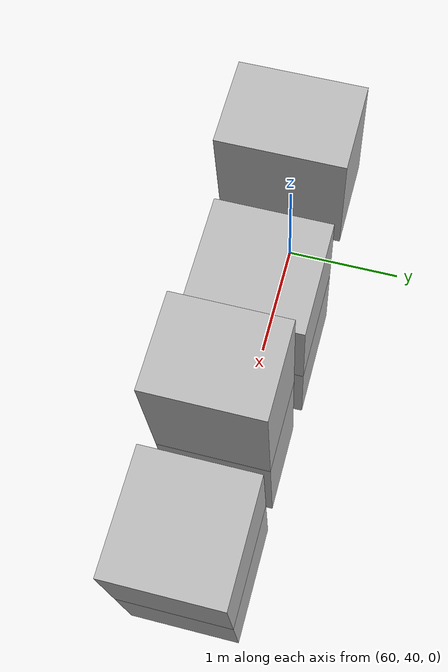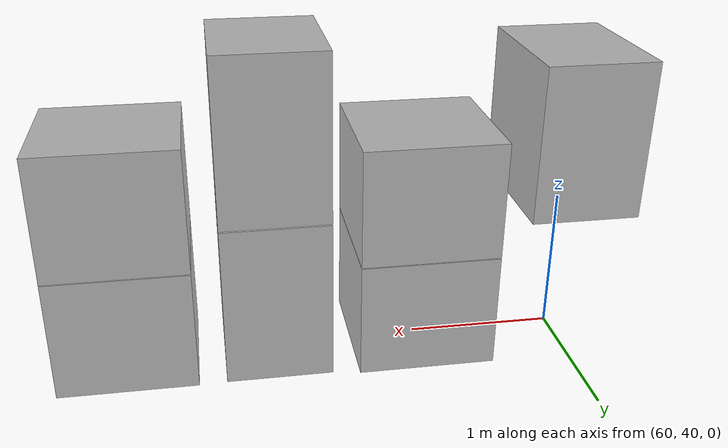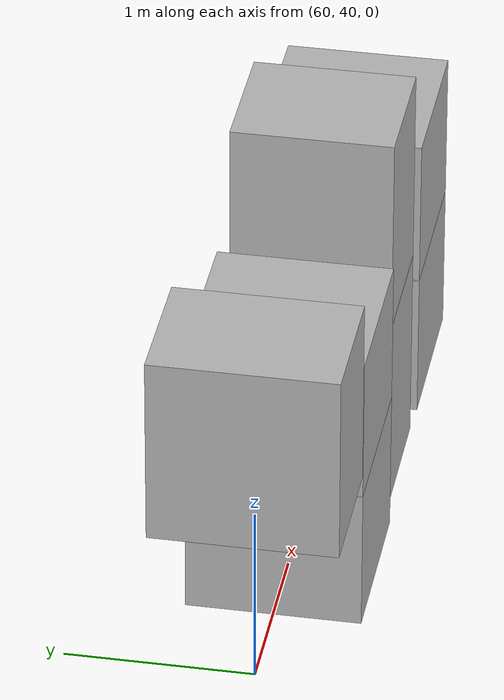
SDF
<sdf version="1.5">
 <world name="default">
  <model name="ground_plane">
   <static>true</static>
   <link name="link">
    <collision name="collision">
     <geometry><plane><normal>0 0 1</normal><size>250 250</size></plane></geometry>
     <surface><friction><ode><mu>1</mu><mu2>1</mu2></ode></friction></surface>
    </collision>
    <visual name="grass">
     <cast_shadows>false</cast_shadows>
     <geometry><mesh><uri>file://grass_plane/meshes/grass_plane.dae</uri></mesh></geometry>
    </visual>
   </link>
  </model>
  <model name="Cardboard_box_top_285">
   <link name="link_0">
    <pose>60 40 1.04675736406 0 0 0</pose>
    <inertial>
     <mass>1</mass>
     <inertia>
      <ixx>0.166667</ixx>
      <ixy>0</ixy>
      <ixz>0</ixz>
      <iyy>0.166667</iyy>
      <iyz>0</iyz>
      <izz>0.166667</izz>
     </inertia>
    </inertial>
    <collision name="collision">
     <geometry>
      <mesh>
       <uri>model://Cardboard_box/meshes/cardboard_box.dae</uri>
       <scale>1.7978200823 2.46832205922 2.61689341016</scale>
      </mesh>
     </geometry>
    </collision>
    <visual name="visual">
     <geometry>
      <mesh>
       <uri>model://Cardboard_box/meshes/cardboard_box.dae</uri>
       <scale>1.7978200823 2.46832205922 2.61689341016</scale>
      </mesh>
     </geometry>
    </visual>
   </link>
   <static>1</static>
  </model>
  <model name="Cardboard_box_286">
   <link name="link_0">
    <pose>61 40 0 0 0 0</pose>
    <inertial>
     <mass>1</mass>
     <inertia>
      <ixx>0.166667</ixx>
      <ixy>0</ixy>
      <ixz>0</ixz>
      <iyy>0.166667</iyy>
      <iyz>0</iyz>
      <izz>0.166667</izz>
     </inertia>
    </inertial>
    <collision name="collision">
     <geometry>
      <mesh>
       <uri>model://Cardboard_box/meshes/cardboard_box.dae</uri>
       <scale>2.33283844401 2.33726424623 2.00786734639</scale>
      </mesh>
     </geometry>
    </collision>
    <visual name="visual">
     <geometry>
      <mesh>
       <uri>model://Cardboard_box/meshes/cardboard_box.dae</uri>
       <scale>2.33283844401 2.33726424623 2.00786734639</scale>
      </mesh>
     </geometry>
    </visual>
   </link>
   <static>1</static>
  </model>
  <model name="Cardboard_box_top_286">
   <link name="link_0">
    <pose>61 40 0.803146938555 0 0 0</pose>
    <inertial>
     <mass>1</mass>
     <inertia>
      <ixx>0.166667</ixx>
      <ixy>0</ixy>
      <ixz>0</ixz>
      <iyy>0.166667</iyy>
      <iyz>0</iyz>
      <izz>0.166667</izz>
     </inertia>
    </inertial>
    <collision name="collision">
     <geometry>
      <mesh>
       <uri>model://Cardboard_box/meshes/cardboard_box.dae</uri>
       <scale>2.33283844401 2.33726424623 2.00786734639</scale>
      </mesh>
     </geometry>
    </collision>
    <visual name="visual">
     <geometry>
      <mesh>
       <uri>model://Cardboard_box/meshes/cardboard_box.dae</uri>
       <scale>2.33283844401 2.33726424623 2.00786734639</scale>
      </mesh>
     </geometry>
    </visual>
   </link>
   <static>1</static>
  </model>
  <model name="Cardboard_box_287">
   <link name="link_0">
    <pose>62 40 0 0 0 0</pose>
    <inertial>
     <mass>1</mass>
     <inertia>
      <ixx>0.166667</ixx>
      <ixy>0</ixy>
      <ixz>0</ixz>
      <iyy>0.166667</iyy>
      <iyz>0</iyz>
      <izz>0.166667</izz>
     </inertia>
    </inertial>
    <collision name="collision">
     <geometry>
      <mesh>
       <uri>model://Cardboard_box/meshes/cardboard_box.dae</uri>
       <scale>1.79371287462 2.16934323292 2.78935721921</scale>
      </mesh>
     </geometry>
    </collision>
    <visual name="visual">
     <geometry>
      <mesh>
       <uri>model://Cardboard_box/meshes/cardboard_box.dae</uri>
       <scale>1.79371287462 2.16934323292 2.78935721921</scale>
      </mesh>
     </geometry>
    </visual>
   </link>
   <static>1</static>
  </model>
  <model name="Cardboard_box_top_287">
   <link name="link_0">
    <pose>62 40 1.11574288768 0 0 0</pose>
    <inertial>
     <mass>1</mass>
     <inertia>
      <ixx>0.166667</ixx>
      <ixy>0</ixy>
      <ixz>0</ixz>
      <iyy>0.166667</iyy>
      <iyz>0</iyz>
      <izz>0.166667</izz>
     </inertia>
    </inertial>
    <collision name="collision">
     <geometry>
      <mesh>
       <uri>model://Cardboard_box/meshes/cardboard_box.dae</uri>
       <scale>1.79371287462 2.16934323292 2.78935721921</scale>
      </mesh>
     </geometry>
    </collision>
    <visual name="visual">
     <geometry>
      <mesh>
       <uri>model://Cardboard_box/meshes/cardboard_box.dae</uri>
       <scale>1.79371287462 2.16934323292 2.78935721921</scale>
      </mesh>
     </geometry>
    </visual>
   </link>
   <static>1</static>
  </model>
  <model name="Cardboard_box_288">
   <link name="link_0">
    <pose>63 40 0 0 0 0</pose>
    <inertial>
     <mass>1</mass>
     <inertia>
      <ixx>0.166667</ixx>
      <ixy>0</ixy>
      <ixz>0</ixz>
      <iyy>0.166667</iyy>
      <iyz>0</iyz>
      <izz>0.166667</izz>
     </inertia>
    </inertial>
    <collision name="collision">
     <geometry>
      <mesh>
       <uri>model://Cardboard_box/meshes/cardboard_box.dae</uri>
       <scale>2.31711006042 2.2130881611 2.09935098561</scale>
      </mesh>
     </geometry>
    </collision>
    <visual name="visual">
     <geometry>
      <mesh>
       <uri>model://Cardboard_box/meshes/cardboard_box.dae</uri>
       <scale>2.31711006042 2.2130881611 2.09935098561</scale>
      </mesh>
     </geometry>
    </visual>
   </link>
   <static>1</static>
  </model>
  <model name="Cardboard_box_top_288">
   <link name="link_0">
    <pose>63 40 0.839740394243 0 0 0</pose>
    <inertial>
     <mass>1</mass>
     <inertia>
      <ixx>0.166667</ixx>
      <ixy>0</ixy>
      <ixz>0</ixz>
      <iyy>0.166667</iyy>
      <iyz>0</iyz>
      <izz>0.166667</izz>
     </inertia>
    </inertial>
    <collision name="collision">
     <geometry>
      <mesh>
       <uri>model://Cardboard_box/meshes/cardboard_box.dae</uri>
       <scale>2.31711006042 2.2130881611 2.09935098561</scale>
      </mesh>
     </geometry>
    </collision>
    <visual name="visual">
     <geometry>
      <mesh>
       <uri>model://Cardboard_box/meshes/cardboard_box.dae</uri>
       <scale>2.31711006042 2.2130881611 2.09935098561</scale>
      </mesh>
     </geometry>
    </visual>
   </link>
   <static>1</static>
  </model>
 </world>
</sdf>
